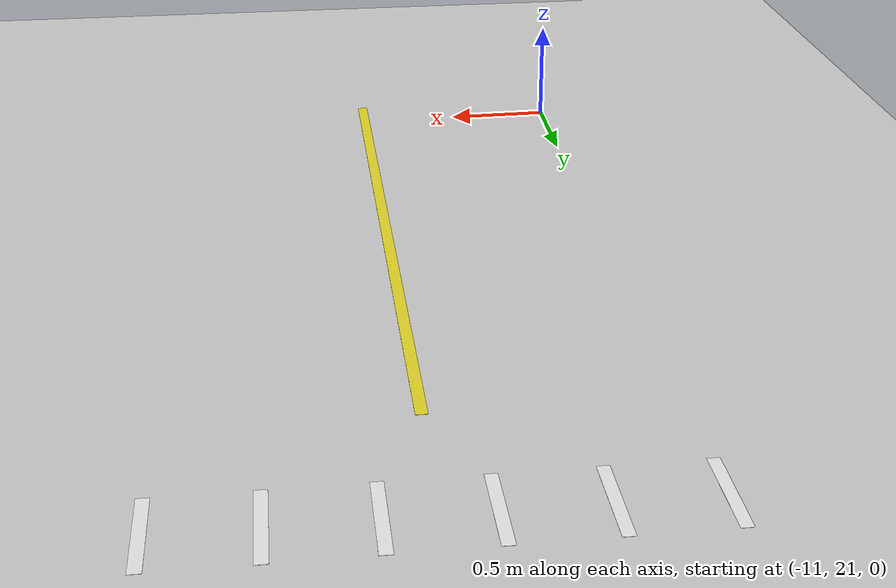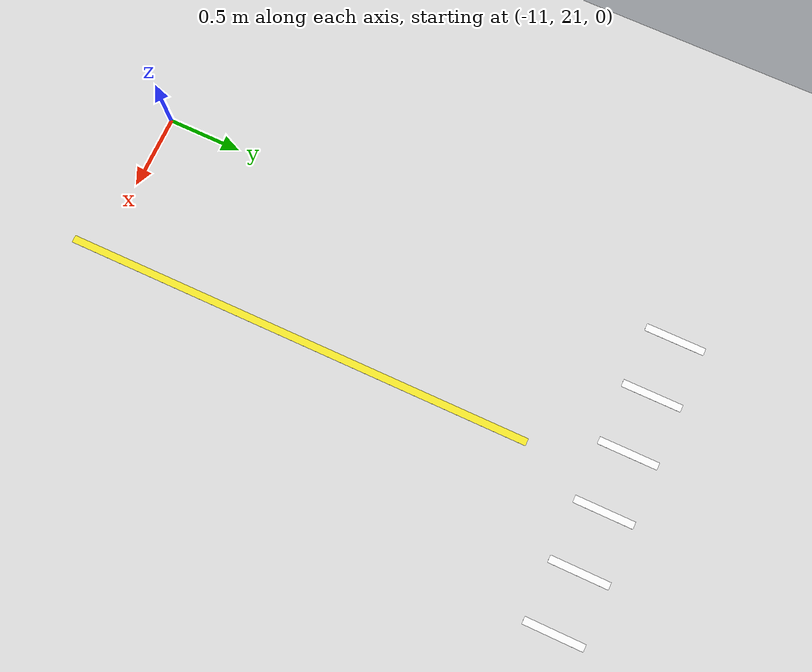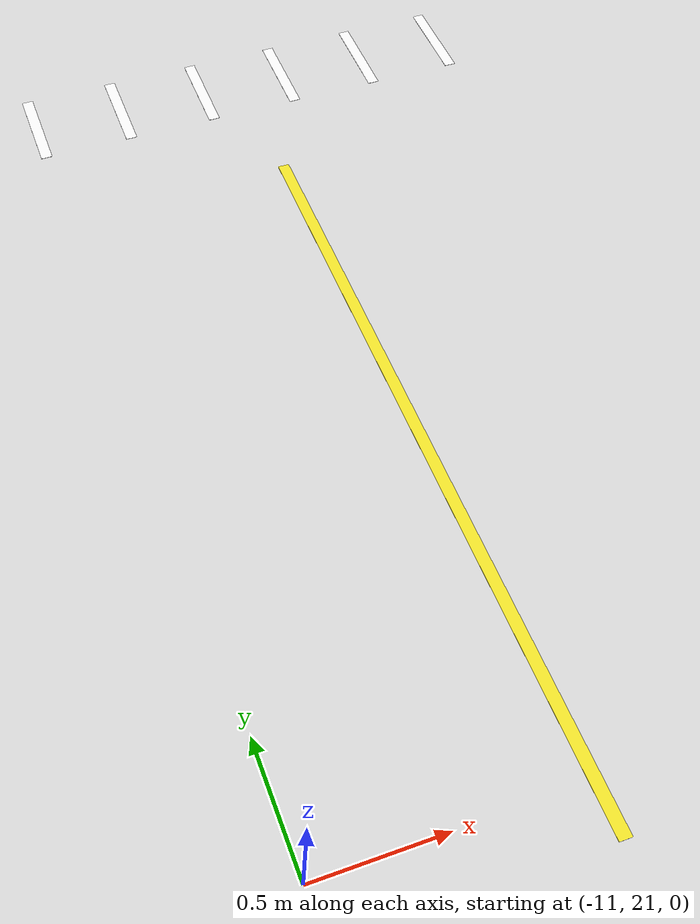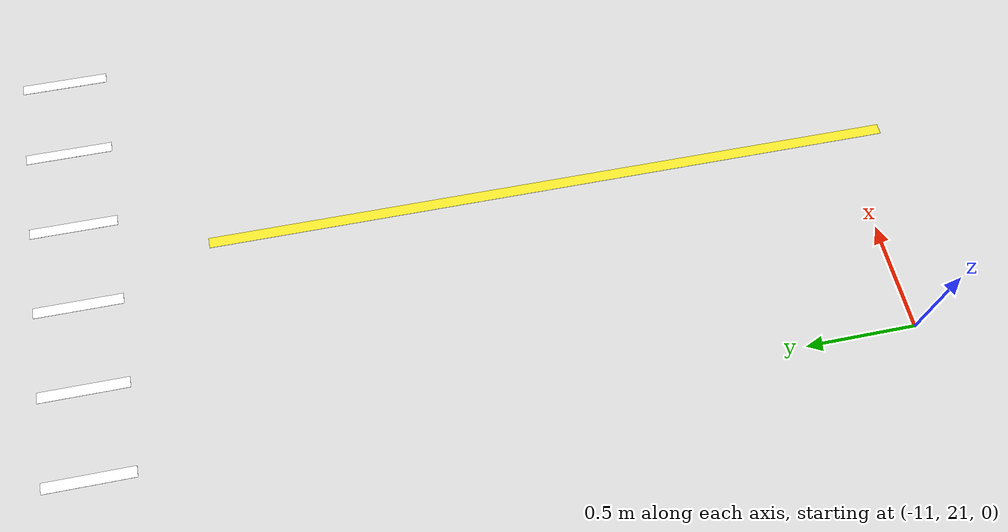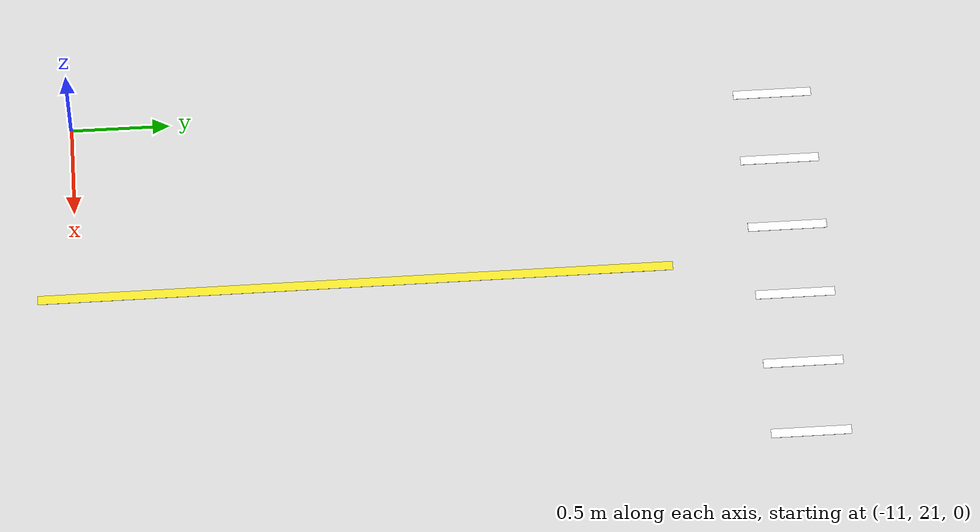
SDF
<sdf version="1.6">
 <world name="default">
  <model name="ground_plane">
   <static>1</static>
   <link name="link">
    <collision name="collision">
     <geometry><plane><normal>0 0 1</normal><size>100 100</size></plane></geometry>
     <surface><friction><ode><mu>100</mu><mu2>50</mu2></ode></friction></surface>
    </collision>
    <visual name="visual">
     <cast_shadows>0</cast_shadows>
     <geometry><plane><normal>0 0 1</normal><size>100 100</size></plane></geometry>
     <material>
      <script><uri>file://media/materials/scripts/gazebo.material</uri><name>Gazebo/Grey</name></script>
     </material>
    </visual>
   </link>
  </model>
  <model name="line320cm_9">
   <link name="link_0">
    <inertial>
     <mass>1</mass>
     <inertia>
      <ixx>0.166667</ixx>
      <ixy>0</ixy>
      <ixz>0</ixz>
      <iyy>0.166667</iyy>
      <iyz>0</iyz>
      <izz>0.166667</izz>
     </inertia>
    </inertial>
    <visual name="visual">
     <geometry><box><size>3.2 0.05 0.001</size></box></geometry>
     <material>
      <lighting>1</lighting>
      <script><uri>file://media/materials/scripts/gazebo.material</uri><name>Gazebo/Yellow</name></script>
     </material>
    </visual>
    <collision name="collision">
     <geometry><box><size>3.2 0.05 1e-05</size></box></geometry>
     <surface>
      <friction>
       <ode><mu>1</mu><mu2>1</mu2><fdir1>0 0 0</fdir1><slip1>0</slip1><slip2>0</slip2></ode>
       <torsional>
        <coefficient>1</coefficient>
        <patch_radius>0</patch_radius>
        <surface_radius>0</surface_radius>
        <use_patch_radius>1</use_patch_radius>
        <ode><slip>0</slip></ode>
       </torsional>
      </friction>
      <bounce><restitution_coefficient>0</restitution_coefficient><threshold>1e+06</threshold></bounce>
      <contact>
       <collide_without_contact>0</collide_without_contact>
       <collide_without_contact_bitmask>1</collide_without_contact_bitmask>
       <collide_bitmask>1</collide_bitmask>
       <ode>
        <soft_cfm>0</soft_cfm>
        <soft_erp>0.2</soft_erp>
        <kp>1e+13</kp>
        <kd>1</kd>
        <max_vel>0.01</max_vel>
        <min_depth>0</min_depth>
       </ode>
       <bullet>
        <split_impulse>1</split_impulse>
        <split_impulse_penetration_threshold>-0.01</split_impulse_penetration_threshold>
        <soft_cfm>0</soft_cfm>
        <soft_erp>0.2</soft_erp>
        <kp>1e+13</kp>
        <kd>1</kd>
       </bullet>
      </contact>
     </surface>
    </collision>
   </link>
   <static>1</static>
   <pose>-10 22.4 0 0 -0 1.5708</pose>
  </model>
  <model name="zebra_crossing_40cmx200cm_9">
   <link name="link_2">
    <inertial>
     <mass>1</mass>
     <inertia>
      <ixx>0.166667</ixx>
      <ixy>0</ixy>
      <ixz>0</ixz>
      <iyy>0.166667</iyy>
      <iyz>0</iyz>
      <izz>0.166667</izz>
     </inertia>
    </inertial>
    <visual name="ModelPreview_5::link_2::visual_1">
     <pose>-0.2 0 0 0 -0 0</pose>
     <geometry><box><size>0.05 0.4 0.001</size></box></geometry>
     <material>
      <lighting>1</lighting>
      <script><uri>file://media/materials/scripts/gazebo.material</uri><name>Gazebo/White</name></script>
     </material>
    </visual>
    <visual name="ModelPreview_5::link_2::visual_3">
     <pose>-0.6 0 0 0 -0 0</pose>
     <geometry><box><size>0.05 0.4 0.001</size></box></geometry>
     <material>
      <lighting>1</lighting>
      <script><uri>file://media/materials/scripts/gazebo.material</uri><name>Gazebo/White</name></script>
     </material>
    </visual>
    <visual name="ModelPreview_5::link_2::visual_4">
     <pose>1 0 0 0 -0 0</pose>
     <geometry><box><size>0.05 0.4 0.001</size></box></geometry>
     <material>
      <lighting>1</lighting>
      <script><uri>file://media/materials/scripts/gazebo.material</uri><name>Gazebo/White</name></script>
     </material>
    </visual>
    <visual name="visual">
     <pose>0.2 0 0 0 -0 0</pose>
     <geometry><box><size>0.05 0.4 0.001</size></box></geometry>
     <material>
      <lighting>1</lighting>
      <script><uri>file://media/materials/scripts/gazebo.material</uri><name>Gazebo/White</name></script>
     </material>
    </visual>
    <visual name="ModelPreview_5::link_2::visual_5">
     <pose>-1 0 0 0 -0 0</pose>
     <geometry><box><size>0.05 0.4 0.001</size></box></geometry>
     <material>
      <lighting>1</lighting>
      <script><uri>file://media/materials/scripts/gazebo.material</uri><name>Gazebo/White</name></script>
     </material>
    </visual>
    <visual name="ModelPreview_5::link_2::visual_2">
     <pose>0.6 0 0 0 -0 0</pose>
     <geometry><box><size>0.05 0.4 0.001</size></box></geometry>
     <material>
      <lighting>1</lighting>
      <script><uri>file://media/materials/scripts/gazebo.material</uri><name>Gazebo/White</name></script>
     </material>
    </visual>
    <collision name="collision_5">
     <pose>-1 0 0 0 -0 0</pose>
     <geometry><box><size>0.05 0.4 1e-05</size></box></geometry>
     <surface>
      <friction>
       <ode><mu>1</mu><mu2>1</mu2><fdir1>0 0 0</fdir1><slip1>0</slip1><slip2>0</slip2></ode>
       <torsional>
        <coefficient>1</coefficient>
        <patch_radius>0</patch_radius>
        <surface_radius>0</surface_radius>
        <use_patch_radius>1</use_patch_radius>
        <ode><slip>0</slip></ode>
       </torsional>
      </friction>
      <bounce><restitution_coefficient>0</restitution_coefficient><threshold>1e+06</threshold></bounce>
      <contact>
       <collide_without_contact>0</collide_without_contact>
       <collide_without_contact_bitmask>1</collide_without_contact_bitmask>
       <collide_bitmask>1</collide_bitmask>
       <ode>
        <soft_cfm>0</soft_cfm>
        <soft_erp>0.2</soft_erp>
        <kp>1e+13</kp>
        <kd>1</kd>
        <max_vel>0.01</max_vel>
        <min_depth>0</min_depth>
       </ode>
       <bullet>
        <split_impulse>1</split_impulse>
        <split_impulse_penetration_threshold>-0.01</split_impulse_penetration_threshold>
        <soft_cfm>0</soft_cfm>
        <soft_erp>0.2</soft_erp>
        <kp>1e+13</kp>
        <kd>1</kd>
       </bullet>
      </contact>
     </surface>
    </collision>
    <collision name="collision">
     <pose>0.2 0 0 0 -0 0</pose>
     <geometry><box><size>0.05 0.4 1e-05</size></box></geometry>
     <surface>
      <friction>
       <ode><mu>1</mu><mu2>1</mu2><fdir1>0 0 0</fdir1><slip1>0</slip1><slip2>0</slip2></ode>
       <torsional>
        <coefficient>1</coefficient>
        <patch_radius>0</patch_radius>
        <surface_radius>0</surface_radius>
        <use_patch_radius>1</use_patch_radius>
        <ode><slip>0</slip></ode>
       </torsional>
      </friction>
      <bounce><restitution_coefficient>0</restitution_coefficient><threshold>1e+06</threshold></bounce>
      <contact>
       <collide_without_contact>0</collide_without_contact>
       <collide_without_contact_bitmask>1</collide_without_contact_bitmask>
       <collide_bitmask>1</collide_bitmask>
       <ode>
        <soft_cfm>0</soft_cfm>
        <soft_erp>0.2</soft_erp>
        <kp>1e+13</kp>
        <kd>1</kd>
        <max_vel>0.01</max_vel>
        <min_depth>0</min_depth>
       </ode>
       <bullet>
        <split_impulse>1</split_impulse>
        <split_impulse_penetration_threshold>-0.01</split_impulse_penetration_threshold>
        <soft_cfm>0</soft_cfm>
        <soft_erp>0.2</soft_erp>
        <kp>1e+13</kp>
        <kd>1</kd>
       </bullet>
      </contact>
     </surface>
    </collision>
    <collision name="collision_3">
     <pose>-0.6 0 0 0 -0 0</pose>
     <geometry><box><size>0.05 0.4 1e-05</size></box></geometry>
     <surface>
      <friction>
       <ode><mu>1</mu><mu2>1</mu2><fdir1>0 0 0</fdir1><slip1>0</slip1><slip2>0</slip2></ode>
       <torsional>
        <coefficient>1</coefficient>
        <patch_radius>0</patch_radius>
        <surface_radius>0</surface_radius>
        <use_patch_radius>1</use_patch_radius>
        <ode><slip>0</slip></ode>
       </torsional>
      </friction>
      <bounce><restitution_coefficient>0</restitution_coefficient><threshold>1e+06</threshold></bounce>
      <contact>
       <collide_without_contact>0</collide_without_contact>
       <collide_without_contact_bitmask>1</collide_without_contact_bitmask>
       <collide_bitmask>1</collide_bitmask>
       <ode>
        <soft_cfm>0</soft_cfm>
        <soft_erp>0.2</soft_erp>
        <kp>1e+13</kp>
        <kd>1</kd>
        <max_vel>0.01</max_vel>
        <min_depth>0</min_depth>
       </ode>
       <bullet>
        <split_impulse>1</split_impulse>
        <split_impulse_penetration_threshold>-0.01</split_impulse_penetration_threshold>
        <soft_cfm>0</soft_cfm>
        <soft_erp>0.2</soft_erp>
        <kp>1e+13</kp>
        <kd>1</kd>
       </bullet>
      </contact>
     </surface>
    </collision>
    <collision name="collision_4">
     <pose>1 0 0 0 -0 0</pose>
     <geometry><box><size>0.05 0.4 1e-05</size></box></geometry>
     <surface>
      <friction>
       <ode><mu>1</mu><mu2>1</mu2><fdir1>0 0 0</fdir1><slip1>0</slip1><slip2>0</slip2></ode>
       <torsional>
        <coefficient>1</coefficient>
        <patch_radius>0</patch_radius>
        <surface_radius>0</surface_radius>
        <use_patch_radius>1</use_patch_radius>
        <ode><slip>0</slip></ode>
       </torsional>
      </friction>
      <bounce><restitution_coefficient>0</restitution_coefficient><threshold>1e+06</threshold></bounce>
      <contact>
       <collide_without_contact>0</collide_without_contact>
       <collide_without_contact_bitmask>1</collide_without_contact_bitmask>
       <collide_bitmask>1</collide_bitmask>
       <ode>
        <soft_cfm>0</soft_cfm>
        <soft_erp>0.2</soft_erp>
        <kp>1e+13</kp>
        <kd>1</kd>
        <max_vel>0.01</max_vel>
        <min_depth>0</min_depth>
       </ode>
       <bullet>
        <split_impulse>1</split_impulse>
        <split_impulse_penetration_threshold>-0.01</split_impulse_penetration_threshold>
        <soft_cfm>0</soft_cfm>
        <soft_erp>0.2</soft_erp>
        <kp>1e+13</kp>
        <kd>1</kd>
       </bullet>
      </contact>
     </surface>
    </collision>
    <collision name="collision_2">
     <pose>0.6 0 0 0 -0 0</pose>
     <geometry><box><size>0.05 0.4 1e-05</size></box></geometry>
     <surface>
      <friction>
       <ode><mu>1</mu><mu2>1</mu2><fdir1>0 0 0</fdir1><slip1>0</slip1><slip2>0</slip2></ode>
       <torsional>
        <coefficient>1</coefficient>
        <patch_radius>0</patch_radius>
        <surface_radius>0</surface_radius>
        <use_patch_radius>1</use_patch_radius>
        <ode><slip>0</slip></ode>
       </torsional>
      </friction>
      <bounce><restitution_coefficient>0</restitution_coefficient><threshold>1e+06</threshold></bounce>
      <contact>
       <collide_without_contact>0</collide_without_contact>
       <collide_without_contact_bitmask>1</collide_without_contact_bitmask>
       <collide_bitmask>1</collide_bitmask>
       <ode>
        <soft_cfm>0</soft_cfm>
        <soft_erp>0.2</soft_erp>
        <kp>1e+13</kp>
        <kd>1</kd>
        <max_vel>0.01</max_vel>
        <min_depth>0</min_depth>
       </ode>
       <bullet>
        <split_impulse>1</split_impulse>
        <split_impulse_penetration_threshold>-0.01</split_impulse_penetration_threshold>
        <soft_cfm>0</soft_cfm>
        <soft_erp>0.2</soft_erp>
        <kp>1e+13</kp>
        <kd>1</kd>
       </bullet>
      </contact>
     </surface>
    </collision>
    <collision name="collision_1">
     <pose>-0.2 0 0 0 -0 0</pose>
     <geometry><box><size>0.05 0.4 1e-05</size></box></geometry>
     <surface>
      <friction>
       <ode><mu>1</mu><mu2>1</mu2><fdir1>0 0 0</fdir1><slip1>0</slip1><slip2>0</slip2></ode>
       <torsional>
        <coefficient>1</coefficient>
        <patch_radius>0</patch_radius>
        <surface_radius>0</surface_radius>
        <use_patch_radius>1</use_patch_radius>
        <ode><slip>0</slip></ode>
       </torsional>
      </friction>
      <bounce><restitution_coefficient>0</restitution_coefficient><threshold>1e+06</threshold></bounce>
      <contact>
       <collide_without_contact>0</collide_without_contact>
       <collide_without_contact_bitmask>1</collide_without_contact_bitmask>
       <collide_bitmask>1</collide_bitmask>
       <ode>
        <soft_cfm>0</soft_cfm>
        <soft_erp>0.2</soft_erp>
        <kp>1e+13</kp>
        <kd>1</kd>
        <max_vel>0.01</max_vel>
        <min_depth>0</min_depth>
       </ode>
       <bullet>
        <split_impulse>1</split_impulse>
        <split_impulse_penetration_threshold>-0.01</split_impulse_penetration_threshold>
        <soft_cfm>0</soft_cfm>
        <soft_erp>0.2</soft_erp>
        <kp>1e+13</kp>
        <kd>1</kd>
       </bullet>
      </contact>
     </surface>
    </collision>
   </link>
   <static>1</static>
   <pose>-10 24.6 0 0 -0 0</pose>
  </model>
 </world>
</sdf>
